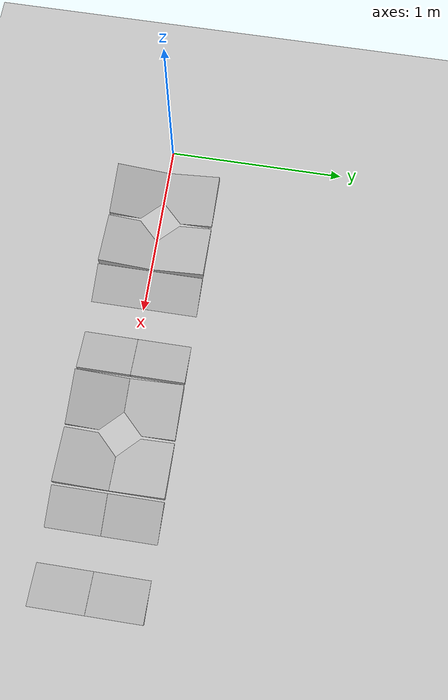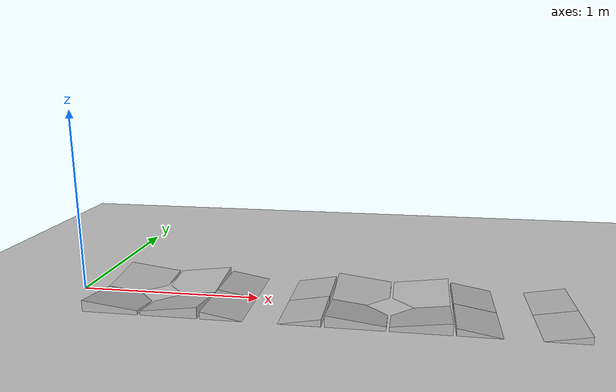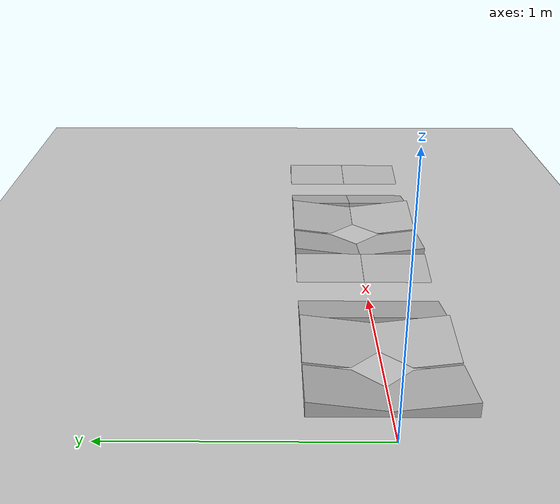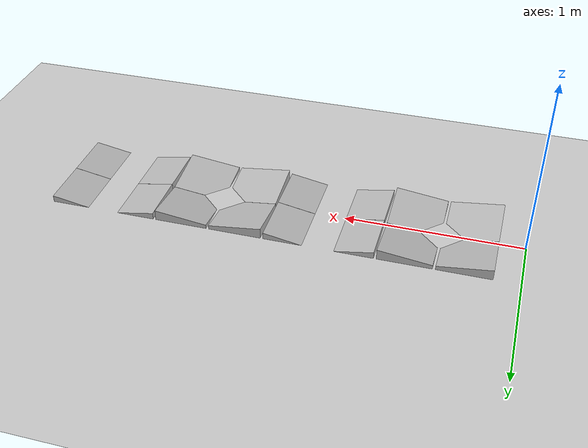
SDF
<?xml version="1.0" ?>
<sdf version="1.4">
  <world name="default">
    <physics type="ode">
      <gravity>0 0 -9.81</gravity>
      <ode>
        <solver>
          <type>quick</type>
          <iters>50</iters>
          <sor>1.4</sor>
        </solver>
        <constraints>
          <cfm>0.0</cfm>
          <erp>0.2</erp>
          <contact_max_correcting_vel>100.0</contact_max_correcting_vel>
          <contact_surface_layer>0.0</contact_surface_layer>
        </constraints>
      </ode>
      <real_time_update_rate>1000</real_time_update_rate>
      <max_step_size>0.001</max_step_size>
    </physics>

    <!-- A global light source -->
    <include>
      <uri>model://sun</uri>
    </include>

    <!-- A ground plane -->
    <include>
      <uri>model://ground_plane</uri>
    </include>

    <!-- Place the front bar -->
    <include>
      <name>font_bar</name>
      <static>1</static>
      <uri>model://front_bar</uri>
      <pose> 0.12000000000000001 0.0 -0.041 0.0 0.0 0.0</pose>
    </include>

    <!-- Place a Block -->
    <include>
      <name>block_2</name>
      <static>1</static>
      <uri>model://diag_Y_positive_10_lifted_size_30</uri>
      <pose> 0.29500000000000004 0.15 -0.041 0.0 0.0 4.71238898038469</pose>
    </include>

    <!-- Place a Block -->
    <include>
      <name>block_3</name>
      <static>1</static>
      <uri>model://diag_Y_positive_10_lifted_size_30</uri>
      <pose> 0.29500000000000004 -0.15 -0.041 0.0 0.0 0.0</pose>
    </include>

    <!-- Place a Block -->
    <include>
      <name>block_4</name>
      <static>1</static>
      <uri>model://diag_Y_positive_10_lifted_size_30</uri>
      <pose> 0.61 0.15 -0.041 0.0 0.0 3.141592653589793</pose>
    </include>

    <!-- Place a Block -->
    <include>
      <name>block_5</name>
      <static>1</static>
      <uri>model://diag_Y_positive_10_lifted_size_30</uri>
      <pose> 0.61 -0.15 -0.041 0.0 0.0 1.5707963267948966</pose>
    </include>

    <!-- Place a Block -->
    <include>
      <name>block_6</name>
      <static>1</static>
      <uri>model://Y_positive_10_lifted_size_30</uri>
      <pose> 0.925 0.15 -0.041 0.0 0.0 0.0</pose>
    </include>

    <!-- Place a Block -->
    <include>
      <name>block_7</name>
      <static>1</static>
      <uri>model://Y_positive_10_lifted_size_30</uri>
      <pose> 0.925 -0.15 -0.041 0.0 0.0 0.0</pose>
    </include>

    <!-- Place a Block -->
    <include>
      <name>block_8</name>
      <static>1</static>
      <uri>model://Y_positive_10_lifted_size_30</uri>
      <pose> 1.2399999999999998 0.15 -0.041 0.0 0.0 3.141592653589793</pose>
    </include>

    <!-- Place a Block -->
    <include>
      <name>block_9</name>
      <static>1</static>
      <uri>model://Y_positive_10_lifted_size_30</uri>
      <pose> 1.2399999999999998 -0.15 -0.041 0.0 0.0 3.141592653589793</pose>
    </include>

    <!-- Place a Block -->
    <include>
      <name>block_10</name>
      <static>1</static>
      <uri>model://diag_Y_positive_10_lifted_size_30</uri>
      <pose> 1.5549999999999997 0.15 -0.041 0.0 0.0 4.71238898038469</pose>
    </include>

    <!-- Place a Block -->
    <include>
      <name>block_11</name>
      <static>1</static>
      <uri>model://diag_Y_positive_10_lifted_size_30</uri>
      <pose> 1.5549999999999997 -0.15 -0.041 0.0 0.0 0.0</pose>
    </include>

    <!-- Place a Block -->
    <include>
      <name>block_12</name>
      <static>1</static>
      <uri>model://diag_Y_positive_10_lifted_size_30</uri>
      <pose> 1.8699999999999997 0.15 -0.041 0.0 0.0 3.141592653589793</pose>
    </include>

    <!-- Place a Block -->
    <include>
      <name>block_13</name>
      <static>1</static>
      <uri>model://diag_Y_positive_10_lifted_size_30</uri>
      <pose> 1.8699999999999997 -0.15 -0.041 0.0 0.0 1.5707963267948966</pose>
    </include>

    <!-- Place a Block -->
    <include>
      <name>block_14</name>
      <static>1</static>
      <uri>model://Y_positive_10_lifted_size_30</uri>
      <pose> 2.1849999999999996 0.15 -0.041 0.0 0.0 0.0</pose>
    </include>

    <!-- Place a Block -->
    <include>
      <name>block_15</name>
      <static>1</static>
      <uri>model://Y_positive_10_lifted_size_30</uri>
      <pose> 2.1849999999999996 -0.15 -0.041 0.0 0.0 0.0</pose>
    </include>

    <!-- Place a Block -->
    <include>
      <name>block_16</name>
      <static>1</static>
      <uri>model://Y_positive_10_lifted_size_30</uri>
      <pose> 2.4999999999999996 0.15 -0.041 0.0 0.0 3.141592653589793</pose>
    </include>

    <!-- Place a Block -->
    <include>
      <name>block_17</name>
      <static>1</static>
      <uri>model://Y_positive_10_lifted_size_30</uri>
      <pose> 2.4999999999999996 -0.15 -0.041 0.0 0.0 3.141592653589793</pose>
    </include>

  </world>
</sdf>

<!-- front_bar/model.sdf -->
<sdf version="1.4">
  <model name="front_bar">
    <link name="link">
      <pose>0 0 0 0 0 0</pose>
      <collision name="collision">
        <geometry>
          <mesh>
            <uri>model://front_bar/meshes/front_bar.stl</uri>
            <scale>0.00999 0.00999 0.00999</scale>
          </mesh>
        </geometry>
      </collision>
      <visual name="visual">
        <geometry>
          <mesh>
            <uri>model://front_bar/meshes/front_bar.stl</uri>
            <scale>0.00999 0.00999 0.00999</scale>
          </mesh>
        </geometry>
      </visual>
    </link>
  </model>
</sdf>

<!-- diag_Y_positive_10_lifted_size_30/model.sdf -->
<sdf version="1.4">
  <model name="diag_Y_positive_10_lifted_size_30">
    <link name="link">
      <pose>0 0 0 0 0 0</pose>
      <collision name="collision">
        <geometry>
          <mesh>
            <uri>model://diag_Y_positive_10_lifted_size_30/meshes/diag_Y_positive_10_degree_slope_lifted_size_30.stl</uri>
            <scale>0.00999 0.00999 0.00999</scale>
          </mesh>
        </geometry>
      </collision>
      <visual name="visual">
        <geometry>
          <mesh>
            <uri>model://diag_Y_positive_10_lifted_size_30/meshes/diag_Y_positive_10_degree_slope_lifted_size_30.stl</uri>
            <scale>0.00999 0.00999 0.00999</scale>
          </mesh>
        </geometry>
      </visual>
    </link>
  </model>
</sdf>

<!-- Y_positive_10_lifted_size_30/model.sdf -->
<sdf version="1.4">
  <model name="Y_positive_10_lifted_size_30">
    <link name="link">
      <pose>0 0 0 0 0 0</pose>
      <collision name="collision">
        <geometry>
          <mesh>
            <uri>model://Y_positive_10_lifted_size_30/meshes/10_degree_slope_lifted_size_30.stl</uri>
            <scale>0.00999 0.00999 0.00999</scale>
          </mesh>
        </geometry>
      </collision>
      <visual name="visual">
        <geometry>
          <mesh>
            <uri>model://Y_positive_10_lifted_size_30/meshes/10_degree_slope_lifted_size_30.stl</uri>
            <scale>0.00999 0.00999 0.00999</scale>
          </mesh>
        </geometry>
      </visual>
    </link>
  </model>
</sdf>
